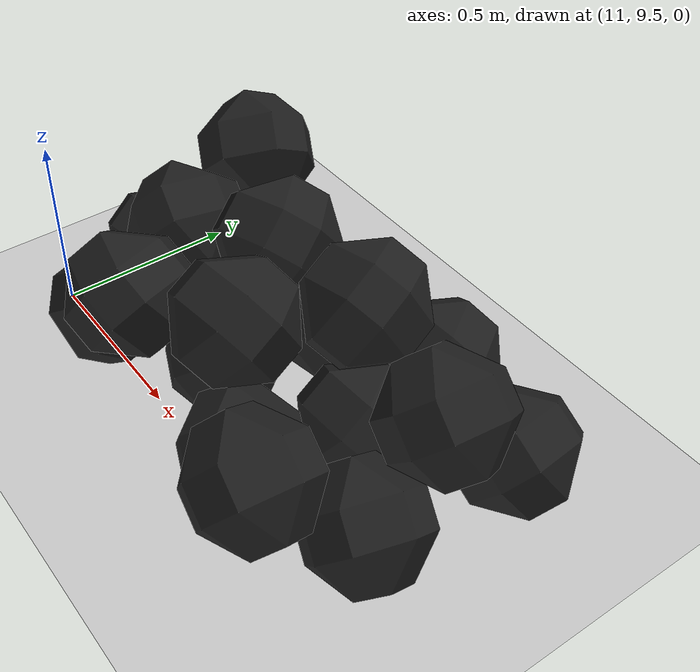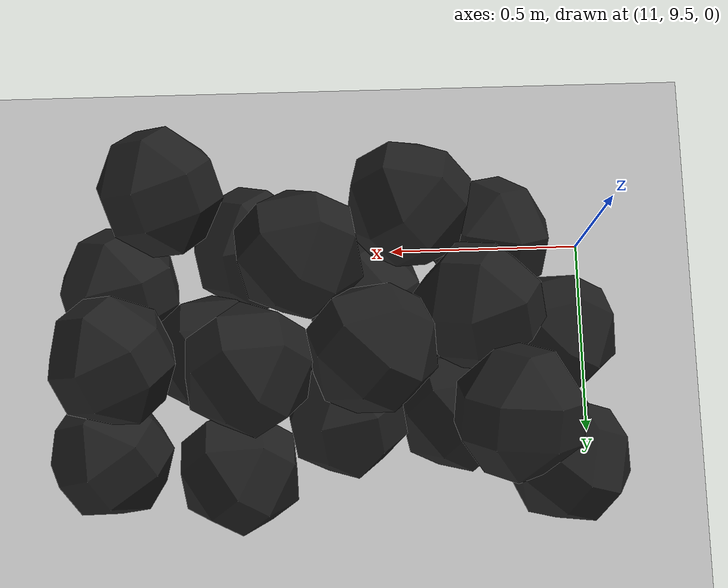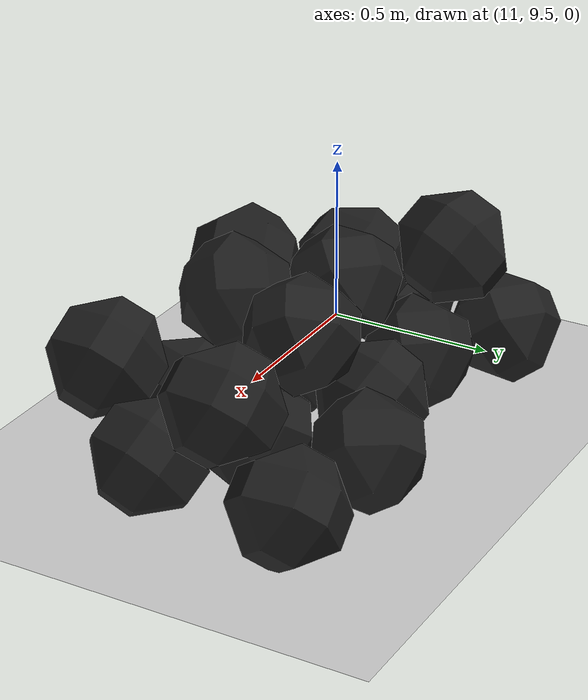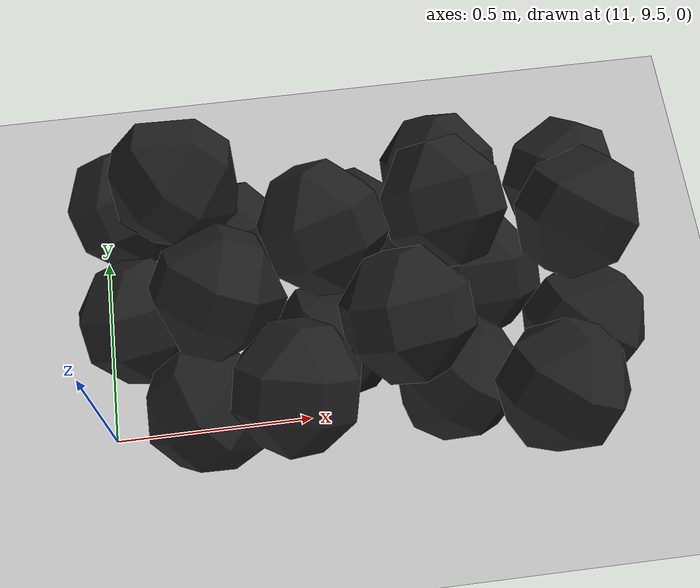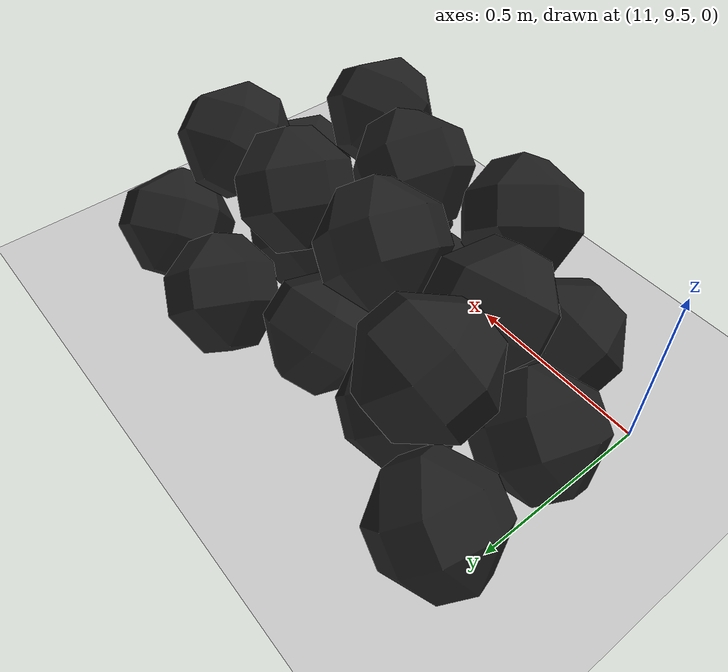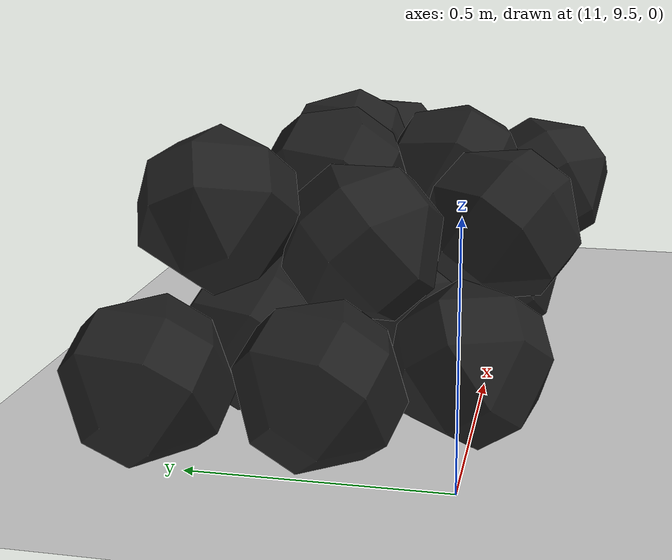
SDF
<sdf version="1.7">
 <world name="default">
  <model name="ground_plane">
   <static>1</static>
   <link name="link">
    <collision name="collision">
     <geometry><plane><normal>0 0 1</normal><size>100 100</size></plane></geometry>
     <surface><friction><ode><mu>100</mu><mu2>50</mu2></ode></friction></surface>
    </collision>
    <visual name="visual">
     <cast_shadows>0</cast_shadows>
     <geometry><plane><normal>0 0 1</normal><size>100 100</size></plane></geometry>
     <material>
      <script><uri>file://media/materials/scripts/gazebo.material</uri><name>Gazebo/Grey</name></script>
     </material>
    </visual>
   </link>
  </model>
  <model name="haoduomiantiaa_13">
   <link name="link_0">
    <inertial>
     <mass>0.2</mass>
     <inertia>
      <ixx>0.166667</ixx>
      <ixy>0</ixy>
      <ixz>0</ixz>
      <iyy>0.166667</iyy>
      <iyz>0</iyz>
      <izz>0.166667</izz>
     </inertia>
    </inertial>
    <visual name="visual">
     <geometry>
      <mesh>
       <uri>/home/lihaoyang/catkin_ws/src/pudong_gazebo/world/stl/haoduomianti.stl</uri>
       <scale>1 1 1</scale>
      </mesh>
     </geometry>
     <material>
      <lighting>1</lighting>
      <script><uri>file://media/materials/scripts/gazebo.material</uri><name>Gazebo/Black</name></script>
      <shader type="pixel"><normal_map>__default__</normal_map></shader>
      <ambient>0.3 0.3 0.3 1</ambient>
      <diffuse>0.7 0.7 0.7 1</diffuse>
      <specular>0.01 0.01 0.01 1</specular>
      <emissive>0 0 0 1</emissive>
     </material>
    </visual>
    <collision name="collision">
     <geometry>
      <mesh>
       <uri>/home/lihaoyang/catkin_ws/src/pudong_gazebo/world/stl/haoduomianti.stl</uri>
       <scale>1 1 1</scale>
      </mesh>
     </geometry>
     <surface>
      <friction>
       <ode><mu>1</mu><mu2>1</mu2><fdir1>0 0 0</fdir1><slip1>0</slip1><slip2>0</slip2></ode>
       <torsional>
        <coefficient>1</coefficient>
        <patch_radius>0</patch_radius>
        <surface_radius>0</surface_radius>
        <use_patch_radius>1</use_patch_radius>
        <ode><slip>0</slip></ode>
       </torsional>
      </friction>
      <bounce><restitution_coefficient>0</restitution_coefficient><threshold>1e+06</threshold></bounce>
      <contact>
       <collide_without_contact>0</collide_without_contact>
       <collide_without_contact_bitmask>1</collide_without_contact_bitmask>
       <collide_bitmask>1</collide_bitmask>
       <ode>
        <soft_cfm>0</soft_cfm>
        <soft_erp>0.2</soft_erp>
        <kp>1e+13</kp>
        <kd>1</kd>
        <max_vel>0.01</max_vel>
        <min_depth>0</min_depth>
       </ode>
       <bullet>
        <split_impulse>1</split_impulse>
        <split_impulse_penetration_threshold>-0.01</split_impulse_penetration_threshold>
        <soft_cfm>0</soft_cfm>
        <soft_erp>0.2</soft_erp>
        <kp>1e+13</kp>
        <kd>1</kd>
       </bullet>
      </contact>
     </surface>
    </collision>
   </link>
   <static>0</static>
   <pose>11.6376 9.95767 -0.116991 0.786776 -0.616267 2.80513</pose>
  </model>
  <model name="haoduomiantiaa_16">
   <link name="link_0">
    <inertial>
     <mass>0.2</mass>
     <inertia>
      <ixx>0.166667</ixx>
      <ixy>0</ixy>
      <ixz>0</ixz>
      <iyy>0.166667</iyy>
      <iyz>0</iyz>
      <izz>0.166667</izz>
     </inertia>
    </inertial>
    <visual name="visual">
     <geometry>
      <mesh>
       <uri>/home/lihaoyang/catkin_ws/src/pudong_gazebo/world/stl/haoduomianti.stl</uri>
       <scale>1 1 1</scale>
      </mesh>
     </geometry>
     <material>
      <lighting>1</lighting>
      <script><uri>file://media/materials/scripts/gazebo.material</uri><name>Gazebo/Black</name></script>
      <shader type="pixel"><normal_map>__default__</normal_map></shader>
      <ambient>0.3 0.3 0.3 1</ambient>
      <diffuse>0.7 0.7 0.7 1</diffuse>
      <specular>0.01 0.01 0.01 1</specular>
      <emissive>0 0 0 1</emissive>
     </material>
    </visual>
    <collision name="collision">
     <geometry>
      <mesh>
       <uri>/home/lihaoyang/catkin_ws/src/pudong_gazebo/world/stl/haoduomianti.stl</uri>
       <scale>1 1 1</scale>
      </mesh>
     </geometry>
     <surface>
      <friction>
       <ode><mu>1</mu><mu2>1</mu2><fdir1>0 0 0</fdir1><slip1>0</slip1><slip2>0</slip2></ode>
       <torsional>
        <coefficient>1</coefficient>
        <patch_radius>0</patch_radius>
        <surface_radius>0</surface_radius>
        <use_patch_radius>1</use_patch_radius>
        <ode><slip>0</slip></ode>
       </torsional>
      </friction>
      <bounce><restitution_coefficient>0</restitution_coefficient><threshold>1e+06</threshold></bounce>
      <contact>
       <collide_without_contact>0</collide_without_contact>
       <collide_without_contact_bitmask>1</collide_without_contact_bitmask>
       <collide_bitmask>1</collide_bitmask>
       <ode>
        <soft_cfm>0</soft_cfm>
        <soft_erp>0.2</soft_erp>
        <kp>1e+13</kp>
        <kd>1</kd>
        <max_vel>0.01</max_vel>
        <min_depth>0</min_depth>
       </ode>
       <bullet>
        <split_impulse>1</split_impulse>
        <split_impulse_penetration_threshold>-0.01</split_impulse_penetration_threshold>
        <soft_cfm>0</soft_cfm>
        <soft_erp>0.2</soft_erp>
        <kp>1e+13</kp>
        <kd>1</kd>
       </bullet>
      </contact>
     </surface>
    </collision>
   </link>
   <static>0</static>
   <pose>11.076 10.0888 -0.119382 0.783614 -0.614378 1.91519</pose>
  </model>
  <model name="haoduomiantiaa_18">
   <link name="link_0">
    <inertial>
     <mass>0.2</mass>
     <inertia>
      <ixx>0.166667</ixx>
      <ixy>0</ixy>
      <ixz>0</ixz>
      <iyy>0.166667</iyy>
      <iyz>0</iyz>
      <izz>0.166667</izz>
     </inertia>
    </inertial>
    <visual name="visual">
     <geometry>
      <mesh>
       <uri>/home/lihaoyang/catkin_ws/src/pudong_gazebo/world/stl/haoduomianti.stl</uri>
       <scale>1 1 1</scale>
      </mesh>
     </geometry>
     <material>
      <lighting>1</lighting>
      <script><uri>file://media/materials/scripts/gazebo.material</uri><name>Gazebo/Black</name></script>
      <shader type="pixel"><normal_map>__default__</normal_map></shader>
      <ambient>0.3 0.3 0.3 1</ambient>
      <diffuse>0.7 0.7 0.7 1</diffuse>
      <specular>0.01 0.01 0.01 1</specular>
      <emissive>0 0 0 1</emissive>
     </material>
    </visual>
    <collision name="collision">
     <geometry>
      <mesh>
       <uri>/home/lihaoyang/catkin_ws/src/pudong_gazebo/world/stl/haoduomianti.stl</uri>
       <scale>1 1 1</scale>
      </mesh>
     </geometry>
     <surface>
      <friction>
       <ode><mu>1</mu><mu2>1</mu2><fdir1>0 0 0</fdir1><slip1>0</slip1><slip2>0</slip2></ode>
       <torsional>
        <coefficient>1</coefficient>
        <patch_radius>0</patch_radius>
        <surface_radius>0</surface_radius>
        <use_patch_radius>1</use_patch_radius>
        <ode><slip>0</slip></ode>
       </torsional>
      </friction>
      <bounce><restitution_coefficient>0</restitution_coefficient><threshold>1e+06</threshold></bounce>
      <contact>
       <collide_without_contact>0</collide_without_contact>
       <collide_without_contact_bitmask>1</collide_without_contact_bitmask>
       <collide_bitmask>1</collide_bitmask>
       <ode>
        <soft_cfm>0</soft_cfm>
        <soft_erp>0.2</soft_erp>
        <kp>1e+13</kp>
        <kd>1</kd>
        <max_vel>0.01</max_vel>
        <min_depth>0</min_depth>
       </ode>
       <bullet>
        <split_impulse>1</split_impulse>
        <split_impulse_penetration_threshold>-0.01</split_impulse_penetration_threshold>
        <soft_cfm>0</soft_cfm>
        <soft_erp>0.2</soft_erp>
        <kp>1e+13</kp>
        <kd>1</kd>
       </bullet>
      </contact>
     </surface>
    </collision>
   </link>
   <static>0</static>
   <pose>11.729 9.57009 0.152429 0.862185 -0.520946 1.69188</pose>
  </model>
  <model name="haoduomiantiaa_20">
   <link name="link_0">
    <inertial>
     <mass>0.2</mass>
     <inertia>
      <ixx>0.166667</ixx>
      <ixy>0</ixy>
      <ixz>0</ixz>
      <iyy>0.166667</iyy>
      <iyz>0</iyz>
      <izz>0.166667</izz>
     </inertia>
    </inertial>
    <visual name="visual">
     <geometry>
      <mesh>
       <uri>/home/lihaoyang/catkin_ws/src/pudong_gazebo/world/stl/haoduomianti.stl</uri>
       <scale>1 1 1</scale>
      </mesh>
     </geometry>
     <material>
      <lighting>1</lighting>
      <script><uri>file://media/materials/scripts/gazebo.material</uri><name>Gazebo/Black</name></script>
      <shader type="pixel"><normal_map>__default__</normal_map></shader>
      <ambient>0.3 0.3 0.3 1</ambient>
      <diffuse>0.7 0.7 0.7 1</diffuse>
      <specular>0.01 0.01 0.01 1</specular>
      <emissive>0 0 0 1</emissive>
     </material>
    </visual>
    <collision name="collision">
     <geometry>
      <mesh>
       <uri>/home/lihaoyang/catkin_ws/src/pudong_gazebo/world/stl/haoduomianti.stl</uri>
       <scale>1 1 1</scale>
      </mesh>
     </geometry>
     <surface>
      <friction>
       <ode><mu>1</mu><mu2>1</mu2><fdir1>0 0 0</fdir1><slip1>0</slip1><slip2>0</slip2></ode>
       <torsional>
        <coefficient>1</coefficient>
        <patch_radius>0</patch_radius>
        <surface_radius>0</surface_radius>
        <use_patch_radius>1</use_patch_radius>
        <ode><slip>0</slip></ode>
       </torsional>
      </friction>
      <bounce><restitution_coefficient>0</restitution_coefficient><threshold>1e+06</threshold></bounce>
      <contact>
       <collide_without_contact>0</collide_without_contact>
       <collide_without_contact_bitmask>1</collide_without_contact_bitmask>
       <collide_bitmask>1</collide_bitmask>
       <ode>
        <soft_cfm>0</soft_cfm>
        <soft_erp>0.2</soft_erp>
        <kp>1e+13</kp>
        <kd>1</kd>
        <max_vel>0.01</max_vel>
        <min_depth>0</min_depth>
       </ode>
       <bullet>
        <split_impulse>1</split_impulse>
        <split_impulse_penetration_threshold>-0.01</split_impulse_penetration_threshold>
        <soft_cfm>0</soft_cfm>
        <soft_erp>0.2</soft_erp>
        <kp>1e+13</kp>
        <kd>1</kd>
       </bullet>
      </contact>
     </surface>
    </collision>
   </link>
   <static>0</static>
   <pose>12.1796 9.846 0.090358 0.716049 -0.546627 -1.12687</pose>
  </model>
  <model name="haoduomiantiaa_22">
   <link name="link_0">
    <inertial>
     <mass>0.2</mass>
     <inertia>
      <ixx>0.166667</ixx>
      <ixy>0</ixy>
      <ixz>0</ixz>
      <iyy>0.166667</iyy>
      <iyz>0</iyz>
      <izz>0.166667</izz>
     </inertia>
    </inertial>
    <visual name="visual">
     <geometry>
      <mesh>
       <uri>/home/lihaoyang/catkin_ws/src/pudong_gazebo/world/stl/haoduomianti.stl</uri>
       <scale>1 1 1</scale>
      </mesh>
     </geometry>
     <material>
      <lighting>1</lighting>
      <script><uri>file://media/materials/scripts/gazebo.material</uri><name>Gazebo/Black</name></script>
      <shader type="pixel"><normal_map>__default__</normal_map></shader>
      <ambient>0.3 0.3 0.3 1</ambient>
      <diffuse>0.7 0.7 0.7 1</diffuse>
      <specular>0.01 0.01 0.01 1</specular>
      <emissive>0 0 0 1</emissive>
     </material>
    </visual>
    <collision name="collision">
     <geometry>
      <mesh>
       <uri>/home/lihaoyang/catkin_ws/src/pudong_gazebo/world/stl/haoduomianti.stl</uri>
       <scale>1 1 1</scale>
      </mesh>
     </geometry>
     <surface>
      <friction>
       <ode><mu>1</mu><mu2>1</mu2><fdir1>0 0 0</fdir1><slip1>0</slip1><slip2>0</slip2></ode>
       <torsional>
        <coefficient>1</coefficient>
        <patch_radius>0</patch_radius>
        <surface_radius>0</surface_radius>
        <use_patch_radius>1</use_patch_radius>
        <ode><slip>0</slip></ode>
       </torsional>
      </friction>
      <bounce><restitution_coefficient>0</restitution_coefficient><threshold>1e+06</threshold></bounce>
      <contact>
       <collide_without_contact>0</collide_without_contact>
       <collide_without_contact_bitmask>1</collide_without_contact_bitmask>
       <collide_bitmask>1</collide_bitmask>
       <ode>
        <soft_cfm>0</soft_cfm>
        <soft_erp>0.2</soft_erp>
        <kp>1e+13</kp>
        <kd>1</kd>
        <max_vel>0.01</max_vel>
        <min_depth>0</min_depth>
       </ode>
       <bullet>
        <split_impulse>1</split_impulse>
        <split_impulse_penetration_threshold>-0.01</split_impulse_penetration_threshold>
        <soft_cfm>0</soft_cfm>
        <soft_erp>0.2</soft_erp>
        <kp>1e+13</kp>
        <kd>1</kd>
       </bullet>
      </contact>
     </surface>
    </collision>
   </link>
   <static>0</static>
   <pose>11.9094 10.092 -0.115306 0.778835 -0.618593 -0.470047</pose>
  </model>
  <model name="haoduomiantiaa_25">
   <link name="link_0">
    <inertial>
     <mass>0.2</mass>
     <inertia>
      <ixx>0.166667</ixx>
      <ixy>0</ixy>
      <ixz>0</ixz>
      <iyy>0.166667</iyy>
      <iyz>0</iyz>
      <izz>0.166667</izz>
     </inertia>
    </inertial>
    <visual name="visual">
     <geometry>
      <mesh>
       <uri>/home/lihaoyang/catkin_ws/src/pudong_gazebo/world/stl/haoduomianti.stl</uri>
       <scale>1 1 1</scale>
      </mesh>
     </geometry>
     <material>
      <lighting>1</lighting>
      <script><uri>file://media/materials/scripts/gazebo.material</uri><name>Gazebo/Black</name></script>
      <shader type="pixel"><normal_map>__default__</normal_map></shader>
      <ambient>0.3 0.3 0.3 1</ambient>
      <diffuse>0.7 0.7 0.7 1</diffuse>
      <specular>0.01 0.01 0.01 1</specular>
      <emissive>0 0 0 1</emissive>
     </material>
    </visual>
    <collision name="collision">
     <geometry>
      <mesh>
       <uri>/home/lihaoyang/catkin_ws/src/pudong_gazebo/world/stl/haoduomianti.stl</uri>
       <scale>1 1 1</scale>
      </mesh>
     </geometry>
     <surface>
      <friction>
       <ode><mu>1</mu><mu2>1</mu2><fdir1>0 0 0</fdir1><slip1>0</slip1><slip2>0</slip2></ode>
       <torsional>
        <coefficient>1</coefficient>
        <patch_radius>0</patch_radius>
        <surface_radius>0</surface_radius>
        <use_patch_radius>1</use_patch_radius>
        <ode><slip>0</slip></ode>
       </torsional>
      </friction>
      <bounce><restitution_coefficient>0</restitution_coefficient><threshold>1e+06</threshold></bounce>
      <contact>
       <collide_without_contact>0</collide_without_contact>
       <collide_without_contact_bitmask>1</collide_without_contact_bitmask>
       <collide_bitmask>1</collide_bitmask>
       <ode>
        <soft_cfm>0</soft_cfm>
        <soft_erp>0.2</soft_erp>
        <kp>1e+13</kp>
        <kd>1</kd>
        <max_vel>0.01</max_vel>
        <min_depth>0</min_depth>
       </ode>
       <bullet>
        <split_impulse>1</split_impulse>
        <split_impulse_penetration_threshold>-0.01</split_impulse_penetration_threshold>
        <soft_cfm>0</soft_cfm>
        <soft_erp>0.2</soft_erp>
        <kp>1e+13</kp>
        <kd>1</kd>
       </bullet>
      </contact>
     </surface>
    </collision>
   </link>
   <static>0</static>
   <pose>11.0797 9.7688 -0.112939 0.847404 -0.643041 1.73727</pose>
  </model>
  <model name="haoduomiantiaa_32">
   <link name="link_0">
    <inertial>
     <mass>0.2</mass>
     <inertia>
      <ixx>0.166667</ixx>
      <ixy>0</ixy>
      <ixz>0</ixz>
      <iyy>0.166667</iyy>
      <iyz>0</iyz>
      <izz>0.166667</izz>
     </inertia>
    </inertial>
    <visual name="visual">
     <geometry>
      <mesh>
       <uri>/home/lihaoyang/catkin_ws/src/pudong_gazebo/world/stl/haoduomianti.stl</uri>
       <scale>1 1 1</scale>
      </mesh>
     </geometry>
     <material>
      <lighting>1</lighting>
      <script><uri>file://media/materials/scripts/gazebo.material</uri><name>Gazebo/Black</name></script>
      <shader type="pixel"><normal_map>__default__</normal_map></shader>
      <ambient>0.3 0.3 0.3 1</ambient>
      <diffuse>0.7 0.7 0.7 1</diffuse>
      <specular>0.01 0.01 0.01 1</specular>
      <emissive>0 0 0 1</emissive>
     </material>
    </visual>
    <collision name="collision">
     <geometry>
      <mesh>
       <uri>/home/lihaoyang/catkin_ws/src/pudong_gazebo/world/stl/haoduomianti.stl</uri>
       <scale>1 1 1</scale>
      </mesh>
     </geometry>
     <surface>
      <friction>
       <ode><mu>1</mu><mu2>1</mu2><fdir1>0 0 0</fdir1><slip1>0</slip1><slip2>0</slip2></ode>
       <torsional>
        <coefficient>1</coefficient>
        <patch_radius>0</patch_radius>
        <surface_radius>0</surface_radius>
        <use_patch_radius>1</use_patch_radius>
        <ode><slip>0</slip></ode>
       </torsional>
      </friction>
      <bounce><restitution_coefficient>0</restitution_coefficient><threshold>1e+06</threshold></bounce>
      <contact>
       <collide_without_contact>0</collide_without_contact>
       <collide_without_contact_bitmask>1</collide_without_contact_bitmask>
       <collide_bitmask>1</collide_bitmask>
       <ode>
        <soft_cfm>0</soft_cfm>
        <soft_erp>0.2</soft_erp>
        <kp>1e+13</kp>
        <kd>1</kd>
        <max_vel>0.01</max_vel>
        <min_depth>0</min_depth>
       </ode>
       <bullet>
        <split_impulse>1</split_impulse>
        <split_impulse_penetration_threshold>-0.01</split_impulse_penetration_threshold>
        <soft_cfm>0</soft_cfm>
        <soft_erp>0.2</soft_erp>
        <kp>1e+13</kp>
        <kd>1</kd>
       </bullet>
      </contact>
     </surface>
    </collision>
   </link>
   <static>0</static>
   <pose>11.3497 9.95203 -0.115251 0.791621 -0.61821 -0.374966</pose>
  </model>
  <model name="haoduomiantiaa_39">
   <link name="link_0">
    <inertial>
     <mass>0.2</mass>
     <inertia>
      <ixx>0.166667</ixx>
      <ixy>0</ixy>
      <ixz>0</ixz>
      <iyy>0.166667</iyy>
      <iyz>0</iyz>
      <izz>0.166667</izz>
     </inertia>
    </inertial>
    <visual name="visual">
     <geometry>
      <mesh>
       <uri>/home/lihaoyang/catkin_ws/src/pudong_gazebo/world/stl/haoduomianti.stl</uri>
       <scale>1 1 1</scale>
      </mesh>
     </geometry>
     <material>
      <lighting>1</lighting>
      <script><uri>file://media/materials/scripts/gazebo.material</uri><name>Gazebo/Black</name></script>
      <shader type="pixel"><normal_map>__default__</normal_map></shader>
      <ambient>0.3 0.3 0.3 1</ambient>
      <diffuse>0.7 0.7 0.7 1</diffuse>
      <specular>0.01 0.01 0.01 1</specular>
      <emissive>0 0 0 1</emissive>
     </material>
    </visual>
    <collision name="collision">
     <geometry>
      <mesh>
       <uri>/home/lihaoyang/catkin_ws/src/pudong_gazebo/world/stl/haoduomianti.stl</uri>
       <scale>1 1 1</scale>
      </mesh>
     </geometry>
     <surface>
      <friction>
       <ode><mu>1</mu><mu2>1</mu2><fdir1>0 0 0</fdir1><slip1>0</slip1><slip2>0</slip2></ode>
       <torsional>
        <coefficient>1</coefficient>
        <patch_radius>0</patch_radius>
        <surface_radius>0</surface_radius>
        <use_patch_radius>1</use_patch_radius>
        <ode><slip>0</slip></ode>
       </torsional>
      </friction>
      <bounce><restitution_coefficient>0</restitution_coefficient><threshold>1e+06</threshold></bounce>
      <contact>
       <collide_without_contact>0</collide_without_contact>
       <collide_without_contact_bitmask>1</collide_without_contact_bitmask>
       <collide_bitmask>1</collide_bitmask>
       <ode>
        <soft_cfm>0</soft_cfm>
        <soft_erp>0.2</soft_erp>
        <kp>1e+13</kp>
        <kd>1</kd>
        <max_vel>0.01</max_vel>
        <min_depth>0</min_depth>
       </ode>
       <bullet>
        <split_impulse>1</split_impulse>
        <split_impulse_penetration_threshold>-0.01</split_impulse_penetration_threshold>
        <soft_cfm>0</soft_cfm>
        <soft_erp>0.2</soft_erp>
        <kp>1e+13</kp>
        <kd>1</kd>
       </bullet>
      </contact>
     </surface>
    </collision>
   </link>
   <static>0</static>
   <pose>11.5842 9.65678 -0.11569 0.785366 -0.615476 -1.41132</pose>
  </model>
  <model name="haoduomiantiaa_54">
   <link name="link_0">
    <inertial>
     <mass>0.2</mass>
     <inertia>
      <ixx>0.166667</ixx>
      <ixy>0</ixy>
      <ixz>0</ixz>
      <iyy>0.166667</iyy>
      <iyz>0</iyz>
      <izz>0.166667</izz>
     </inertia>
    </inertial>
    <visual name="visual">
     <geometry>
      <mesh>
       <uri>/home/lihaoyang/catkin_ws/src/pudong_gazebo/world/stl/haoduomianti.stl</uri>
       <scale>1 1 1</scale>
      </mesh>
     </geometry>
     <material>
      <lighting>1</lighting>
      <script><uri>file://media/materials/scripts/gazebo.material</uri><name>Gazebo/Black</name></script>
      <shader type="pixel"><normal_map>__default__</normal_map></shader>
      <ambient>0.3 0.3 0.3 1</ambient>
      <diffuse>0.7 0.7 0.7 1</diffuse>
      <specular>0.01 0.01 0.01 1</specular>
      <emissive>0 0 0 1</emissive>
     </material>
    </visual>
    <collision name="collision">
     <geometry>
      <mesh>
       <uri>/home/lihaoyang/catkin_ws/src/pudong_gazebo/world/stl/haoduomianti.stl</uri>
       <scale>1 1 1</scale>
      </mesh>
     </geometry>
     <surface>
      <friction>
       <ode><mu>1</mu><mu2>1</mu2><fdir1>0 0 0</fdir1><slip1>0</slip1><slip2>0</slip2></ode>
       <torsional>
        <coefficient>1</coefficient>
        <patch_radius>0</patch_radius>
        <surface_radius>0</surface_radius>
        <use_patch_radius>1</use_patch_radius>
        <ode><slip>0</slip></ode>
       </torsional>
      </friction>
      <bounce><restitution_coefficient>0</restitution_coefficient><threshold>1e+06</threshold></bounce>
      <contact>
       <collide_without_contact>0</collide_without_contact>
       <collide_without_contact_bitmask>1</collide_without_contact_bitmask>
       <collide_bitmask>1</collide_bitmask>
       <ode>
        <soft_cfm>0</soft_cfm>
        <soft_erp>0.2</soft_erp>
        <kp>1e+13</kp>
        <kd>1</kd>
        <max_vel>0.01</max_vel>
        <min_depth>0</min_depth>
       </ode>
       <bullet>
        <split_impulse>1</split_impulse>
        <split_impulse_penetration_threshold>-0.01</split_impulse_penetration_threshold>
        <soft_cfm>0</soft_cfm>
        <soft_erp>0.2</soft_erp>
        <kp>1e+13</kp>
        <kd>1</kd>
       </bullet>
      </contact>
     </surface>
    </collision>
   </link>
   <static>0</static>
   <pose>12.0958 9.43745 0.065311 0.655668 -0.598128 3.0518</pose>
  </model>
  <model name="haoduomiantiaa_59">
   <link name="link_0">
    <inertial>
     <mass>0.2</mass>
     <inertia>
      <ixx>0.166667</ixx>
      <ixy>0</ixy>
      <ixz>0</ixz>
      <iyy>0.166667</iyy>
      <iyz>0</iyz>
      <izz>0.166667</izz>
     </inertia>
    </inertial>
    <visual name="visual">
     <geometry>
      <mesh>
       <uri>/home/lihaoyang/catkin_ws/src/pudong_gazebo/world/stl/haoduomianti.stl</uri>
       <scale>1 1 1</scale>
      </mesh>
     </geometry>
     <material>
      <lighting>1</lighting>
      <script><uri>file://media/materials/scripts/gazebo.material</uri><name>Gazebo/Black</name></script>
      <shader type="pixel"><normal_map>__default__</normal_map></shader>
      <ambient>0.3 0.3 0.3 1</ambient>
      <diffuse>0.7 0.7 0.7 1</diffuse>
      <specular>0.01 0.01 0.01 1</specular>
      <emissive>0 0 0 1</emissive>
     </material>
    </visual>
    <collision name="collision">
     <geometry>
      <mesh>
       <uri>/home/lihaoyang/catkin_ws/src/pudong_gazebo/world/stl/haoduomianti.stl</uri>
       <scale>1 1 1</scale>
      </mesh>
     </geometry>
     <surface>
      <friction>
       <ode><mu>1</mu><mu2>1</mu2><fdir1>0 0 0</fdir1><slip1>0</slip1><slip2>0</slip2></ode>
       <torsional>
        <coefficient>1</coefficient>
        <patch_radius>0</patch_radius>
        <surface_radius>0</surface_radius>
        <use_patch_radius>1</use_patch_radius>
        <ode><slip>0</slip></ode>
       </torsional>
      </friction>
      <bounce><restitution_coefficient>0</restitution_coefficient><threshold>1e+06</threshold></bounce>
      <contact>
       <collide_without_contact>0</collide_without_contact>
       <collide_without_contact_bitmask>1</collide_without_contact_bitmask>
       <collide_bitmask>1</collide_bitmask>
       <ode>
        <soft_cfm>0</soft_cfm>
        <soft_erp>0.2</soft_erp>
        <kp>1e+13</kp>
        <kd>1</kd>
        <max_vel>0.01</max_vel>
        <min_depth>0</min_depth>
       </ode>
       <bullet>
        <split_impulse>1</split_impulse>
        <split_impulse_penetration_threshold>-0.01</split_impulse_penetration_threshold>
        <soft_cfm>0</soft_cfm>
        <soft_erp>0.2</soft_erp>
        <kp>1e+13</kp>
        <kd>1</kd>
       </bullet>
      </contact>
     </surface>
    </collision>
   </link>
   <static>0</static>
   <pose>11.9187 9.84476 0.15732 0.758396 -0.835252 -0.42254</pose>
  </model>
  <model name="haoduomiantiaa_63">
   <link name="link_0">
    <inertial>
     <mass>0.2</mass>
     <inertia>
      <ixx>0.166667</ixx>
      <ixy>0</ixy>
      <ixz>0</ixz>
      <iyy>0.166667</iyy>
      <iyz>0</iyz>
      <izz>0.166667</izz>
     </inertia>
    </inertial>
    <visual name="visual">
     <geometry>
      <mesh>
       <uri>/home/lihaoyang/catkin_ws/src/pudong_gazebo/world/stl/haoduomianti.stl</uri>
       <scale>1 1 1</scale>
      </mesh>
     </geometry>
     <material>
      <lighting>1</lighting>
      <script><uri>file://media/materials/scripts/gazebo.material</uri><name>Gazebo/Black</name></script>
      <shader type="pixel"><normal_map>__default__</normal_map></shader>
      <ambient>0.3 0.3 0.3 1</ambient>
      <diffuse>0.7 0.7 0.7 1</diffuse>
      <specular>0.01 0.01 0.01 1</specular>
      <emissive>0 0 0 1</emissive>
     </material>
    </visual>
    <collision name="collision">
     <geometry>
      <mesh>
       <uri>/home/lihaoyang/catkin_ws/src/pudong_gazebo/world/stl/haoduomianti.stl</uri>
       <scale>1 1 1</scale>
      </mesh>
     </geometry>
     <surface>
      <friction>
       <ode><mu>1</mu><mu2>1</mu2><fdir1>0 0 0</fdir1><slip1>0</slip1><slip2>0</slip2></ode>
       <torsional>
        <coefficient>1</coefficient>
        <patch_radius>0</patch_radius>
        <surface_radius>0</surface_radius>
        <use_patch_radius>1</use_patch_radius>
        <ode><slip>0</slip></ode>
       </torsional>
      </friction>
      <bounce><restitution_coefficient>0</restitution_coefficient><threshold>1e+06</threshold></bounce>
      <contact>
       <collide_without_contact>0</collide_without_contact>
       <collide_without_contact_bitmask>1</collide_without_contact_bitmask>
       <collide_bitmask>1</collide_bitmask>
       <ode>
        <soft_cfm>0</soft_cfm>
        <soft_erp>0.2</soft_erp>
        <kp>1e+13</kp>
        <kd>1</kd>
        <max_vel>0.01</max_vel>
        <min_depth>0</min_depth>
       </ode>
       <bullet>
        <split_impulse>1</split_impulse>
        <split_impulse_penetration_threshold>-0.01</split_impulse_penetration_threshold>
        <soft_cfm>0</soft_cfm>
        <soft_erp>0.2</soft_erp>
        <kp>1e+13</kp>
        <kd>1</kd>
       </bullet>
      </contact>
     </surface>
    </collision>
   </link>
   <static>0</static>
   <pose>11.2535 10.0464 0.178426 0.845659 -0.417241 -1.65433</pose>
  </model>
  <model name="haoduomiantiaa_64">
   <link name="link_0">
    <inertial>
     <mass>0.2</mass>
     <inertia>
      <ixx>0.166667</ixx>
      <ixy>0</ixy>
      <ixz>0</ixz>
      <iyy>0.166667</iyy>
      <iyz>0</iyz>
      <izz>0.166667</izz>
     </inertia>
    </inertial>
    <visual name="visual">
     <geometry>
      <mesh>
       <uri>/home/lihaoyang/catkin_ws/src/pudong_gazebo/world/stl/haoduomianti.stl</uri>
       <scale>1 1 1</scale>
      </mesh>
     </geometry>
     <material>
      <lighting>1</lighting>
      <script><uri>file://media/materials/scripts/gazebo.material</uri><name>Gazebo/Black</name></script>
      <shader type="pixel"><normal_map>__default__</normal_map></shader>
      <ambient>0.3 0.3 0.3 1</ambient>
      <diffuse>0.7 0.7 0.7 1</diffuse>
      <specular>0.01 0.01 0.01 1</specular>
      <emissive>0 0 0 1</emissive>
     </material>
    </visual>
    <collision name="collision">
     <geometry>
      <mesh>
       <uri>/home/lihaoyang/catkin_ws/src/pudong_gazebo/world/stl/haoduomianti.stl</uri>
       <scale>1 1 1</scale>
      </mesh>
     </geometry>
     <surface>
      <friction>
       <ode><mu>1</mu><mu2>1</mu2><fdir1>0 0 0</fdir1><slip1>0</slip1><slip2>0</slip2></ode>
       <torsional>
        <coefficient>1</coefficient>
        <patch_radius>0</patch_radius>
        <surface_radius>0</surface_radius>
        <use_patch_radius>1</use_patch_radius>
        <ode><slip>0</slip></ode>
       </torsional>
      </friction>
      <bounce><restitution_coefficient>0</restitution_coefficient><threshold>1e+06</threshold></bounce>
      <contact>
       <collide_without_contact>0</collide_without_contact>
       <collide_without_contact_bitmask>1</collide_without_contact_bitmask>
       <collide_bitmask>1</collide_bitmask>
       <ode>
        <soft_cfm>0</soft_cfm>
        <soft_erp>0.2</soft_erp>
        <kp>1e+13</kp>
        <kd>1</kd>
        <max_vel>0.01</max_vel>
        <min_depth>0</min_depth>
       </ode>
       <bullet>
        <split_impulse>1</split_impulse>
        <split_impulse_penetration_threshold>-0.01</split_impulse_penetration_threshold>
        <soft_cfm>0</soft_cfm>
        <soft_erp>0.2</soft_erp>
        <kp>1e+13</kp>
        <kd>1</kd>
       </bullet>
      </contact>
     </surface>
    </collision>
   </link>
   <static>0</static>
   <pose>11.4704 9.46096 0.10684 0.741746 -0.624338 -0.706089</pose>
  </model>
  <model name="haoduomiantiaa_76">
   <link name="link_0">
    <inertial>
     <mass>0.2</mass>
     <inertia>
      <ixx>0.166667</ixx>
      <ixy>0</ixy>
      <ixz>0</ixz>
      <iyy>0.166667</iyy>
      <iyz>0</iyz>
      <izz>0.166667</izz>
     </inertia>
    </inertial>
    <visual name="visual">
     <geometry>
      <mesh>
       <uri>/home/lihaoyang/catkin_ws/src/pudong_gazebo/world/stl/haoduomianti.stl</uri>
       <scale>1 1 1</scale>
      </mesh>
     </geometry>
     <material>
      <lighting>1</lighting>
      <script><uri>file://media/materials/scripts/gazebo.material</uri><name>Gazebo/Black</name></script>
      <shader type="pixel"><normal_map>__default__</normal_map></shader>
      <ambient>0.3 0.3 0.3 1</ambient>
      <diffuse>0.7 0.7 0.7 1</diffuse>
      <specular>0.01 0.01 0.01 1</specular>
      <emissive>0 0 0 1</emissive>
     </material>
    </visual>
    <collision name="collision">
     <geometry>
      <mesh>
       <uri>/home/lihaoyang/catkin_ws/src/pudong_gazebo/world/stl/haoduomianti.stl</uri>
       <scale>1 1 1</scale>
      </mesh>
     </geometry>
     <surface>
      <friction>
       <ode><mu>1</mu><mu2>1</mu2><fdir1>0 0 0</fdir1><slip1>0</slip1><slip2>0</slip2></ode>
       <torsional>
        <coefficient>1</coefficient>
        <patch_radius>0</patch_radius>
        <surface_radius>0</surface_radius>
        <use_patch_radius>1</use_patch_radius>
        <ode><slip>0</slip></ode>
       </torsional>
      </friction>
      <bounce><restitution_coefficient>0</restitution_coefficient><threshold>1e+06</threshold></bounce>
      <contact>
       <collide_without_contact>0</collide_without_contact>
       <collide_without_contact_bitmask>1</collide_without_contact_bitmask>
       <collide_bitmask>1</collide_bitmask>
       <ode>
        <soft_cfm>0</soft_cfm>
        <soft_erp>0.2</soft_erp>
        <kp>1e+13</kp>
        <kd>1</kd>
        <max_vel>0.01</max_vel>
        <min_depth>0</min_depth>
       </ode>
       <bullet>
        <split_impulse>1</split_impulse>
        <split_impulse_penetration_threshold>-0.01</split_impulse_penetration_threshold>
        <soft_cfm>0</soft_cfm>
        <soft_erp>0.2</soft_erp>
        <kp>1e+13</kp>
        <kd>1</kd>
       </bullet>
      </contact>
     </surface>
    </collision>
   </link>
   <static>0</static>
   <pose>12.2362 10.0458 -0.129749 0.785403 -0.61463 -0.961005</pose>
  </model>
  <model name="haoduomiantiaa_96">
   <link name="link_0">
    <inertial>
     <mass>0.2</mass>
     <inertia>
      <ixx>0.166667</ixx>
      <ixy>0</ixy>
      <ixz>0</ixz>
      <iyy>0.166667</iyy>
      <iyz>0</iyz>
      <izz>0.166667</izz>
     </inertia>
    </inertial>
    <visual name="visual">
     <geometry>
      <mesh>
       <uri>/home/lihaoyang/catkin_ws/src/pudong_gazebo/world/stl/haoduomianti.stl</uri>
       <scale>1 1 1</scale>
      </mesh>
     </geometry>
     <material>
      <lighting>1</lighting>
      <script><uri>file://media/materials/scripts/gazebo.material</uri><name>Gazebo/Black</name></script>
      <shader type="pixel"><normal_map>__default__</normal_map></shader>
      <ambient>0.3 0.3 0.3 1</ambient>
      <diffuse>0.7 0.7 0.7 1</diffuse>
      <specular>0.01 0.01 0.01 1</specular>
      <emissive>0 0 0 1</emissive>
     </material>
    </visual>
    <collision name="collision">
     <geometry>
      <mesh>
       <uri>/home/lihaoyang/catkin_ws/src/pudong_gazebo/world/stl/haoduomianti.stl</uri>
       <scale>1 1 1</scale>
      </mesh>
     </geometry>
     <surface>
      <friction>
       <ode><mu>1</mu><mu2>1</mu2><fdir1>0 0 0</fdir1><slip1>0</slip1><slip2>0</slip2></ode>
       <torsional>
        <coefficient>1</coefficient>
        <patch_radius>0</patch_radius>
        <surface_radius>0</surface_radius>
        <use_patch_radius>1</use_patch_radius>
        <ode><slip>0</slip></ode>
       </torsional>
      </friction>
      <bounce><restitution_coefficient>0</restitution_coefficient><threshold>1e+06</threshold></bounce>
      <contact>
       <collide_without_contact>0</collide_without_contact>
       <collide_without_contact_bitmask>1</collide_without_contact_bitmask>
       <collide_bitmask>1</collide_bitmask>
       <ode>
        <soft_cfm>0</soft_cfm>
        <soft_erp>0.2</soft_erp>
        <kp>1e+13</kp>
        <kd>1</kd>
        <max_vel>0.01</max_vel>
        <min_depth>0</min_depth>
       </ode>
       <bullet>
        <split_impulse>1</split_impulse>
        <split_impulse_penetration_threshold>-0.01</split_impulse_penetration_threshold>
        <soft_cfm>0</soft_cfm>
        <soft_erp>0.2</soft_erp>
        <kp>1e+13</kp>
        <kd>1</kd>
       </bullet>
      </contact>
     </surface>
    </collision>
   </link>
   <static>0</static>
   <pose>11.9703 9.79376 -0.115629 0.785162 -0.615568 -0.467773</pose>
  </model>
  <model name="haoduomiantiaa_99">
   <link name="link_0">
    <inertial>
     <mass>0.2</mass>
     <inertia>
      <ixx>0.166667</ixx>
      <ixy>0</ixy>
      <ixz>0</ixz>
      <iyy>0.166667</iyy>
      <iyz>0</iyz>
      <izz>0.166667</izz>
     </inertia>
    </inertial>
    <visual name="visual">
     <geometry>
      <mesh>
       <uri>/home/lihaoyang/catkin_ws/src/pudong_gazebo/world/stl/haoduomianti.stl</uri>
       <scale>1 1 1</scale>
      </mesh>
     </geometry>
     <material>
      <lighting>1</lighting>
      <script><uri>file://media/materials/scripts/gazebo.material</uri><name>Gazebo/Black</name></script>
      <shader type="pixel"><normal_map>__default__</normal_map></shader>
      <ambient>0.3 0.3 0.3 1</ambient>
      <diffuse>0.7 0.7 0.7 1</diffuse>
      <specular>0.01 0.01 0.01 1</specular>
      <emissive>0 0 0 1</emissive>
     </material>
    </visual>
    <collision name="collision">
     <geometry>
      <mesh>
       <uri>/home/lihaoyang/catkin_ws/src/pudong_gazebo/world/stl/haoduomianti.stl</uri>
       <scale>1 1 1</scale>
      </mesh>
     </geometry>
     <surface>
      <friction>
       <ode><mu>1</mu><mu2>1</mu2><fdir1>0 0 0</fdir1><slip1>0</slip1><slip2>0</slip2></ode>
       <torsional>
        <coefficient>1</coefficient>
        <patch_radius>0</patch_radius>
        <surface_radius>0</surface_radius>
        <use_patch_radius>1</use_patch_radius>
        <ode><slip>0</slip></ode>
       </torsional>
      </friction>
      <bounce><restitution_coefficient>0</restitution_coefficient><threshold>1e+06</threshold></bounce>
      <contact>
       <collide_without_contact>0</collide_without_contact>
       <collide_without_contact_bitmask>1</collide_without_contact_bitmask>
       <collide_bitmask>1</collide_bitmask>
       <ode>
        <soft_cfm>0</soft_cfm>
        <soft_erp>0.2</soft_erp>
        <kp>1e+13</kp>
        <kd>1</kd>
        <max_vel>0.01</max_vel>
        <min_depth>0</min_depth>
       </ode>
       <bullet>
        <split_impulse>1</split_impulse>
        <split_impulse_penetration_threshold>-0.01</split_impulse_penetration_threshold>
        <soft_cfm>0</soft_cfm>
        <soft_erp>0.2</soft_erp>
        <kp>1e+13</kp>
        <kd>1</kd>
       </bullet>
      </contact>
     </surface>
    </collision>
   </link>
   <static>0</static>
   <pose>11.3468 9.71383 0.10201 0.925664 -0.707221 -1.31476</pose>
  </model>
  <model name="haoduomiantiaa_111">
   <link name="link_0">
    <inertial>
     <mass>0.2</mass>
     <inertia>
      <ixx>0.166667</ixx>
      <ixy>0</ixy>
      <ixz>0</ixz>
      <iyy>0.166667</iyy>
      <iyz>0</iyz>
      <izz>0.166667</izz>
     </inertia>
    </inertial>
    <visual name="visual">
     <geometry>
      <mesh>
       <uri>/home/lihaoyang/catkin_ws/src/pudong_gazebo/world/stl/haoduomianti.stl</uri>
       <scale>1 1 1</scale>
      </mesh>
     </geometry>
     <material>
      <lighting>1</lighting>
      <script><uri>file://media/materials/scripts/gazebo.material</uri><name>Gazebo/Black</name></script>
      <shader type="pixel"><normal_map>__default__</normal_map></shader>
      <ambient>0.3 0.3 0.3 1</ambient>
      <diffuse>0.7 0.7 0.7 1</diffuse>
      <specular>0.01 0.01 0.01 1</specular>
      <emissive>0 0 0 1</emissive>
     </material>
    </visual>
    <collision name="collision">
     <geometry>
      <mesh>
       <uri>/home/lihaoyang/catkin_ws/src/pudong_gazebo/world/stl/haoduomianti.stl</uri>
       <scale>1 1 1</scale>
      </mesh>
     </geometry>
     <surface>
      <friction>
       <ode><mu>1</mu><mu2>1</mu2><fdir1>0 0 0</fdir1><slip1>0</slip1><slip2>0</slip2></ode>
       <torsional>
        <coefficient>1</coefficient>
        <patch_radius>0</patch_radius>
        <surface_radius>0</surface_radius>
        <use_patch_radius>1</use_patch_radius>
        <ode><slip>0</slip></ode>
       </torsional>
      </friction>
      <bounce><restitution_coefficient>0</restitution_coefficient><threshold>1e+06</threshold></bounce>
      <contact>
       <collide_without_contact>0</collide_without_contact>
       <collide_without_contact_bitmask>1</collide_without_contact_bitmask>
       <collide_bitmask>1</collide_bitmask>
       <ode>
        <soft_cfm>0</soft_cfm>
        <soft_erp>0.2</soft_erp>
        <kp>1e+13</kp>
        <kd>1</kd>
        <max_vel>0.01</max_vel>
        <min_depth>0</min_depth>
       </ode>
       <bullet>
        <split_impulse>1</split_impulse>
        <split_impulse_penetration_threshold>-0.01</split_impulse_penetration_threshold>
        <soft_cfm>0</soft_cfm>
        <soft_erp>0.2</soft_erp>
        <kp>1e+13</kp>
        <kd>1</kd>
       </bullet>
      </contact>
     </surface>
    </collision>
   </link>
   <static>0</static>
   <pose>12.2089 9.63185 -0.112965 0.722929 -0.643415 2.87189</pose>
  </model>
  <model name="haoduomiantiaa_127">
   <link name="link_0">
    <inertial>
     <mass>0.2</mass>
     <inertia>
      <ixx>0.166667</ixx>
      <ixy>0</ixy>
      <ixz>0</ixz>
      <iyy>0.166667</iyy>
      <iyz>0</iyz>
      <izz>0.166667</izz>
     </inertia>
    </inertial>
    <visual name="visual">
     <geometry>
      <mesh>
       <uri>/home/lihaoyang/catkin_ws/src/pudong_gazebo/world/stl/haoduomianti.stl</uri>
       <scale>1 1 1</scale>
      </mesh>
     </geometry>
     <material>
      <lighting>1</lighting>
      <script><uri>file://media/materials/scripts/gazebo.material</uri><name>Gazebo/Black</name></script>
      <shader type="pixel"><normal_map>__default__</normal_map></shader>
      <ambient>0.3 0.3 0.3 1</ambient>
      <diffuse>0.7 0.7 0.7 1</diffuse>
      <specular>0.01 0.01 0.01 1</specular>
      <emissive>0 0 0 1</emissive>
     </material>
    </visual>
    <collision name="collision">
     <geometry>
      <mesh>
       <uri>/home/lihaoyang/catkin_ws/src/pudong_gazebo/world/stl/haoduomianti.stl</uri>
       <scale>1 1 1</scale>
      </mesh>
     </geometry>
     <surface>
      <friction>
       <ode><mu>1</mu><mu2>1</mu2><fdir1>0 0 0</fdir1><slip1>0</slip1><slip2>0</slip2></ode>
       <torsional>
        <coefficient>1</coefficient>
        <patch_radius>0</patch_radius>
        <surface_radius>0</surface_radius>
        <use_patch_radius>1</use_patch_radius>
        <ode><slip>0</slip></ode>
       </torsional>
      </friction>
      <bounce><restitution_coefficient>0</restitution_coefficient><threshold>1e+06</threshold></bounce>
      <contact>
       <collide_without_contact>0</collide_without_contact>
       <collide_without_contact_bitmask>1</collide_without_contact_bitmask>
       <collide_bitmask>1</collide_bitmask>
       <ode>
        <soft_cfm>0</soft_cfm>
        <soft_erp>0.2</soft_erp>
        <kp>1e+13</kp>
        <kd>1</kd>
        <max_vel>0.01</max_vel>
        <min_depth>0</min_depth>
       </ode>
       <bullet>
        <split_impulse>1</split_impulse>
        <split_impulse_penetration_threshold>-0.01</split_impulse_penetration_threshold>
        <soft_cfm>0</soft_cfm>
        <soft_erp>0.2</soft_erp>
        <kp>1e+13</kp>
        <kd>1</kd>
       </bullet>
      </contact>
     </surface>
    </collision>
   </link>
   <static>0</static>
   <pose>11.2503 9.50867 -0.111843 0.787152 -0.615302 0.351692</pose>
  </model>
  <model name="haoduomiantiaa_128">
   <link name="link_0">
    <inertial>
     <mass>0.2</mass>
     <inertia>
      <ixx>0.166667</ixx>
      <ixy>0</ixy>
      <ixz>0</ixz>
      <iyy>0.166667</iyy>
      <iyz>0</iyz>
      <izz>0.166667</izz>
     </inertia>
    </inertial>
    <visual name="visual">
     <geometry>
      <mesh>
       <uri>/home/lihaoyang/catkin_ws/src/pudong_gazebo/world/stl/haoduomianti.stl</uri>
       <scale>1 1 1</scale>
      </mesh>
     </geometry>
     <material>
      <lighting>1</lighting>
      <script><uri>file://media/materials/scripts/gazebo.material</uri><name>Gazebo/Black</name></script>
      <shader type="pixel"><normal_map>__default__</normal_map></shader>
      <ambient>0.3 0.3 0.3 1</ambient>
      <diffuse>0.7 0.7 0.7 1</diffuse>
      <specular>0.01 0.01 0.01 1</specular>
      <emissive>0 0 0 1</emissive>
     </material>
    </visual>
    <collision name="collision">
     <geometry>
      <mesh>
       <uri>/home/lihaoyang/catkin_ws/src/pudong_gazebo/world/stl/haoduomianti.stl</uri>
       <scale>1 1 1</scale>
      </mesh>
     </geometry>
     <surface>
      <friction>
       <ode><mu>1</mu><mu2>1</mu2><fdir1>0 0 0</fdir1><slip1>0</slip1><slip2>0</slip2></ode>
       <torsional>
        <coefficient>1</coefficient>
        <patch_radius>0</patch_radius>
        <surface_radius>0</surface_radius>
        <use_patch_radius>1</use_patch_radius>
        <ode><slip>0</slip></ode>
       </torsional>
      </friction>
      <bounce><restitution_coefficient>0</restitution_coefficient><threshold>1e+06</threshold></bounce>
      <contact>
       <collide_without_contact>0</collide_without_contact>
       <collide_without_contact_bitmask>1</collide_without_contact_bitmask>
       <collide_bitmask>1</collide_bitmask>
       <ode>
        <soft_cfm>0</soft_cfm>
        <soft_erp>0.2</soft_erp>
        <kp>1e+13</kp>
        <kd>1</kd>
        <max_vel>0.01</max_vel>
        <min_depth>0</min_depth>
       </ode>
       <bullet>
        <split_impulse>1</split_impulse>
        <split_impulse_penetration_threshold>-0.01</split_impulse_penetration_threshold>
        <soft_cfm>0</soft_cfm>
        <soft_erp>0.2</soft_erp>
        <kp>1e+13</kp>
        <kd>1</kd>
       </bullet>
      </contact>
     </surface>
    </collision>
   </link>
   <static>0</static>
   <pose>11.5942 9.85163 0.164334 0.799712 -0.512629 -2.35363</pose>
  </model>
  <model name="haoduomiantiaa_130">
   <link name="link_0">
    <inertial>
     <mass>0.2</mass>
     <inertia>
      <ixx>0.166667</ixx>
      <ixy>0</ixy>
      <ixz>0</ixz>
      <iyy>0.166667</iyy>
      <iyz>0</iyz>
      <izz>0.166667</izz>
     </inertia>
    </inertial>
    <visual name="visual">
     <geometry>
      <mesh>
       <uri>/home/lihaoyang/catkin_ws/src/pudong_gazebo/world/stl/haoduomianti.stl</uri>
       <scale>1 1 1</scale>
      </mesh>
     </geometry>
     <material>
      <lighting>1</lighting>
      <script><uri>file://media/materials/scripts/gazebo.material</uri><name>Gazebo/Black</name></script>
      <shader type="pixel"><normal_map>__default__</normal_map></shader>
      <ambient>0.3 0.3 0.3 1</ambient>
      <diffuse>0.7 0.7 0.7 1</diffuse>
      <specular>0.01 0.01 0.01 1</specular>
      <emissive>0 0 0 1</emissive>
     </material>
    </visual>
    <collision name="collision">
     <geometry>
      <mesh>
       <uri>/home/lihaoyang/catkin_ws/src/pudong_gazebo/world/stl/haoduomianti.stl</uri>
       <scale>1 1 1</scale>
      </mesh>
     </geometry>
     <surface>
      <friction>
       <ode><mu>1</mu><mu2>1</mu2><fdir1>0 0 0</fdir1><slip1>0</slip1><slip2>0</slip2></ode>
       <torsional>
        <coefficient>1</coefficient>
        <patch_radius>0</patch_radius>
        <surface_radius>0</surface_radius>
        <use_patch_radius>1</use_patch_radius>
        <ode><slip>0</slip></ode>
       </torsional>
      </friction>
      <bounce><restitution_coefficient>0</restitution_coefficient><threshold>1e+06</threshold></bounce>
      <contact>
       <collide_without_contact>0</collide_without_contact>
       <collide_without_contact_bitmask>1</collide_without_contact_bitmask>
       <collide_bitmask>1</collide_bitmask>
       <ode>
        <soft_cfm>0</soft_cfm>
        <soft_erp>0.2</soft_erp>
        <kp>1e+13</kp>
        <kd>1</kd>
        <max_vel>0.01</max_vel>
        <min_depth>0</min_depth>
       </ode>
       <bullet>
        <split_impulse>1</split_impulse>
        <split_impulse_penetration_threshold>-0.01</split_impulse_penetration_threshold>
        <soft_cfm>0</soft_cfm>
        <soft_erp>0.2</soft_erp>
        <kp>1e+13</kp>
        <kd>1</kd>
       </bullet>
      </contact>
     </surface>
    </collision>
   </link>
   <static>0</static>
   <pose>11.8726 9.51731 -0.115481 0.7854 -0.615419 0.697908</pose>
  </model>
 </world>
</sdf>
